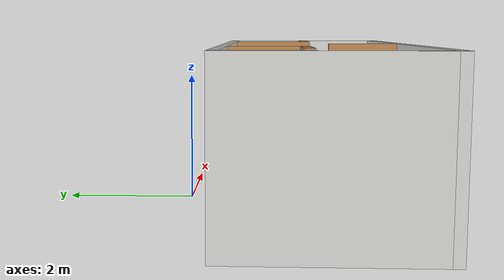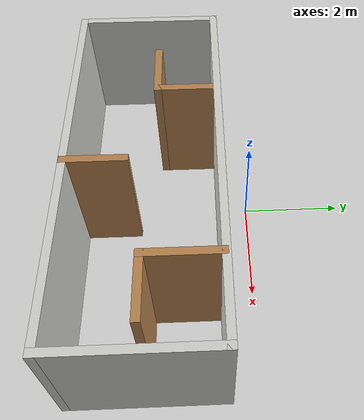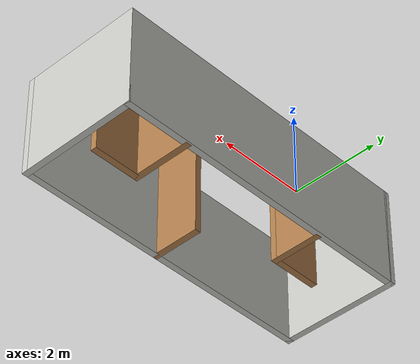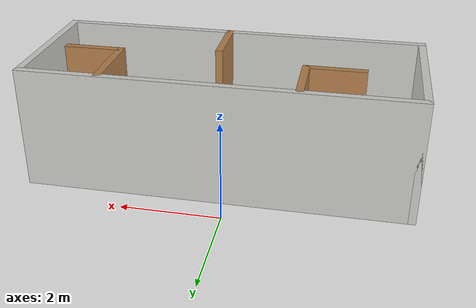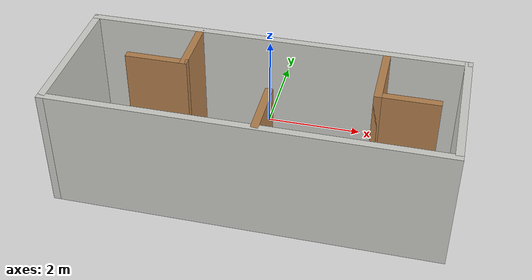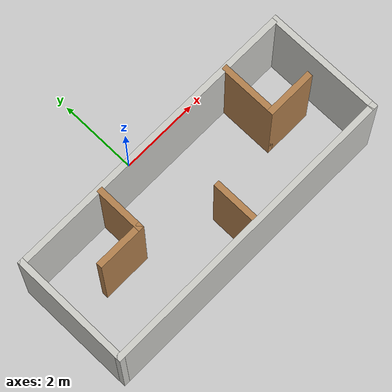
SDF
<?xml version='1.0'?>
<sdf version='1.7'>
  <model name='room'>
    <pose>0.25 -1.7475 0 0 -0 0</pose>
    <link name='Wall_1'>
      <collision name='Wall_1_Collision'>
        <geometry>
          <box>
            <size>3 0.15 2.5</size>
          </box>
        </geometry>
        <pose>0 0 1.25 0 -0 0</pose>
      </collision>
      <visual name='Wall_1_Visual'>
        <pose>0 0 1.25 0 -0 0</pose>
        <geometry>
          <box>
            <size>3 0.15 2.5</size>
          </box>
        </geometry>
        <material>
          <script>
            <uri>file://media/materials/scripts/gazebo.material</uri>
            <name>Gazebo/CeilingTiled</name>
          </script>
          <ambient>1 1 1 1</ambient>
        </material>
        <meta>
          <layer>0</layer>
        </meta>
      </visual>
      <pose>-3.8 -0.2475 0 0 -0 1.5708</pose>
    </link>
    <link name='Wall_11'>
      <collision name='Wall_11_Collision'>
        <geometry>
          <box>
            <size>1.5 0.15 2.5</size>
          </box>
        </geometry>
        <pose>0 0 1.25 0 -0 0</pose>
      </collision>
      <visual name='Wall_11_Visual'>
        <pose>0 0 1.25 0 -0 0</pose>
        <geometry>
          <box>
            <size>1.5 0.15 2.5</size>
          </box>
        </geometry>
        <material>
          <script>
            <uri>file://media/materials/scripts/gazebo.material</uri>
            <name>Gazebo/Wood</name>
          </script>
          <ambient>1 1 1 1</ambient>
        </material>
        <meta>
          <layer>0</layer>
        </meta>
      </visual>
      <pose>2.23 0.4625 0 0 -0 -1.5708</pose>
    </link>
    <link name='Wall_12'>
      <collision name='Wall_12_Collision'>
        <geometry>
          <box>
            <size>1.25 0.15 2.5</size>
          </box>
        </geometry>
        <pose>0 0 1.25 0 -0 0</pose>
      </collision>
      <visual name='Wall_12_Visual'>
        <pose>0 0 1.25 0 -0 0</pose>
        <geometry>
          <box>
            <size>1.25 0.15 2.5</size>
          </box>
        </geometry>
        <material>
          <script>
            <uri>file://media/materials/scripts/gazebo.material</uri>
            <name>Gazebo/Wood</name>
          </script>
          <ambient>1 1 1 1</ambient>
        </material>
        <meta>
          <layer>0</layer>
        </meta>
      </visual>
      <pose>2.78 -0.2125 0 0 -0 0</pose>
    </link>
    <link name='Wall_14'>
      <collision name='Wall_14_Collision'>
        <geometry>
          <box>
            <size>1.25 0.15 2.5</size>
          </box>
        </geometry>
        <pose>0 0 1.25 0 -0 0</pose>
      </collision>
      <visual name='Wall_14_Visual'>
        <pose>0 0 1.25 0 -0 0</pose>
        <geometry>
          <box>
            <size>1.25 0.15 2.5</size>
          </box>
        </geometry>
        <material>
          <script>
            <uri>file://media/materials/scripts/gazebo.material</uri>
            <name>Gazebo/Wood</name>
          </script>
          <ambient>1 1 1 1</ambient>
        </material>
        <meta>
          <layer>0</layer>
        </meta>
      </visual>
      <pose>0.24 -1.1125 0 0 -0 1.5708</pose>
    </link>
    <link name='Wall_2'>
      <collision name='Wall_2_Collision'>
        <geometry>
          <box>
            <size>7.75 0.15 2.5</size>
          </box>
        </geometry>
        <pose>0 0 1.25 0 -0 0</pose>
      </collision>
      <visual name='Wall_2_Visual'>
        <pose>0 0 1.25 0 -0 0</pose>
        <geometry>
          <box>
            <size>7.75 0.15 2.5</size>
          </box>
        </geometry>
        <material>
          <script>
            <uri>file://media/materials/scripts/gazebo.material</uri>
            <name>Gazebo/CeilingTiled</name>
          </script>
          <ambient>1 1 1 1</ambient>
        </material>
        <meta>
          <layer>0</layer>
        </meta>
      </visual>
      <pose>-0 1.1775 0 0 -0 0</pose>
    </link>
    <link name='Wall_3'>
      <collision name='Wall_3_Collision'>
        <geometry>
          <box>
            <size>3 0.15 2.5</size>
          </box>
        </geometry>
        <pose>0 0 1.25 0 -0 0</pose>
      </collision>
      <visual name='Wall_3_Visual'>
        <pose>0 0 1.25 0 -0 0</pose>
        <geometry>
          <box>
            <size>3 0.15 2.5</size>
          </box>
        </geometry>
        <material>
          <script>
            <uri>file://media/materials/scripts/gazebo.material</uri>
            <name>Gazebo/CeilingTiled</name>
          </script>
          <ambient>1 1 1 1</ambient>
        </material>
        <meta>
          <layer>0</layer>
        </meta>
      </visual>
      <pose>3.8 -0.2475 0 0 -0 -1.5708</pose>
    </link>
    <link name='Wall_4'>
      <collision name='Wall_4_Collision'>
        <geometry>
          <box>
            <size>7.75 0.15 2.5</size>
          </box>
        </geometry>
        <pose>0 0 1.25 0 -0 0</pose>
      </collision>
      <visual name='Wall_4_Visual'>
        <pose>0 0 1.25 0 -0 0</pose>
        <geometry>
          <box>
            <size>7.75 0.15 2.5</size>
          </box>
        </geometry>
        <material>
          <script>
            <uri>file://media/materials/scripts/gazebo.material</uri>
            <name>Gazebo/CeilingTiled</name>
          </script>
          <ambient>1 1 1 1</ambient>
        </material>
        <meta>
          <layer>0</layer>
        </meta>
      </visual>
      <pose>-0 -1.6725 0 0 -0 3.14159</pose>
    </link>
    <link name='Wall_6'>
      <collision name='Wall_6_Collision'>
        <geometry>
          <box>
            <size>1.25 0.15 2.5</size>
          </box>
        </geometry>
        <pose>0 0 1.25 0 -0 0</pose>
      </collision>
      <visual name='Wall_6_Visual'>
        <pose>0 0 1.25 0 -0 0</pose>
        <geometry>
          <box>
            <size>1.25 0.15 2.5</size>
          </box>
        </geometry>
        <material>
          <script>
            <uri>file://media/materials/scripts/gazebo.material</uri>
            <name>Gazebo/Wood</name>
          </script>
          <ambient>1 1 1 1</ambient>
        </material>
        <meta>
          <layer>0</layer>
        </meta>
      </visual>
      <pose>-1.57 0.5475 0 0 -0 -1.5708</pose>
    </link>
    <link name='Wall_7'>
      <collision name='Wall_7_Collision'>
        <geometry>
          <box>
            <size>1.25 0.15 2.5</size>
          </box>
        </geometry>
        <pose>0 0 1.25 0 -0 0</pose>
      </collision>
      <visual name='Wall_7_Visual'>
        <pose>0 0 1.25 0 -0 0</pose>
        <geometry>
          <box>
            <size>1.25 0.15 2.5</size>
          </box>
        </geometry>
        <material>
          <script>
            <uri>file://media/materials/scripts/gazebo.material</uri>
            <name>Gazebo/Wood</name>
          </script>
          <ambient>1 1 1 1</ambient>
        </material>
        <meta>
          <layer>0</layer>
        </meta>
      </visual>
      <pose>-2.12 -0.0025 0 0 -0 3.14159</pose>
    </link>
    <static>1</static>
  </model>
</sdf>
